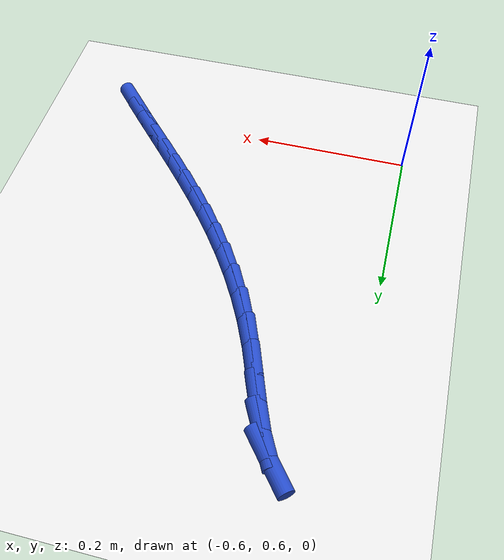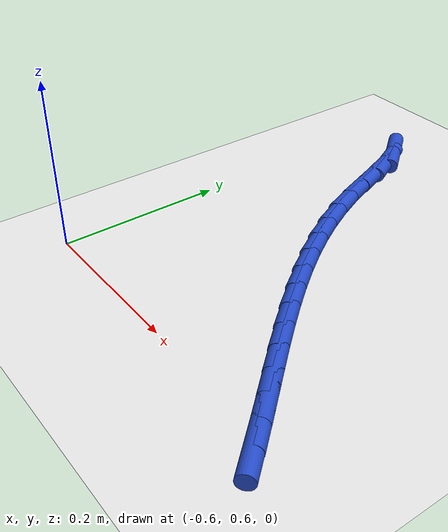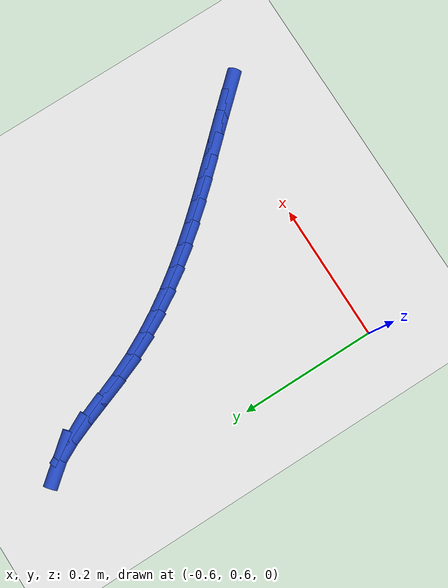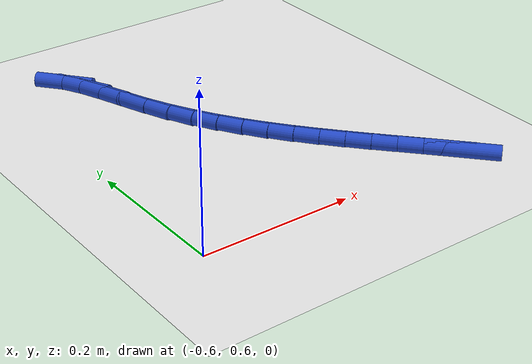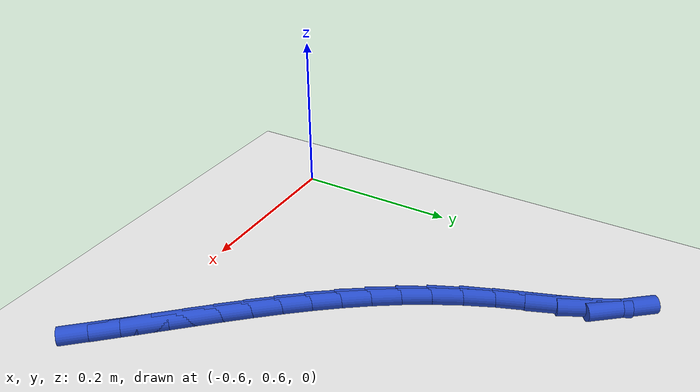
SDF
<sdf version="1.6">
 <world name="default">
  <model name="ground_plane">
   <static>1</static>
   <link name="link">
    <collision name="collision">
     <geometry><plane><normal>0 0 1</normal><size>100 100</size></plane></geometry>
     <surface><friction><ode><mu>100</mu><mu2>50</mu2></ode></friction></surface>
    </collision>
    <visual name="visual">
     <cast_shadows>0</cast_shadows>
     <geometry><plane><normal>0 0 1</normal><size>100 100</size></plane></geometry>
     <material>
      <script><uri>file://media/materials/scripts/gazebo.material</uri><name>Gazebo/WhiteGlow</name></script>
     </material>
    </visual>
   </link>
  </model>
  <model name="line">
   <link name="link_20">
    <pose>-0.21698567780988717 0.5856822221177187 0.01 0 1.57 -0.8376991096954095</pose>
    <collision name="collision">
     <geometry><cylinder><radius>0.01</radius><length>0.08</length></cylinder></geometry>
    </collision>
    <visual name="visual">
     <material>
      <script><name>Gazebo/Blue</name><uri>file://media/materials/scripts/gazebo.material</uri></script>
     </material>
     <geometry><cylinder><radius>0.01</radius><length>0.08</length></cylinder></geometry>
    </visual>
   </link>
   <link name="link_21">
    <pose>-0.23803005412788228 0.6090516001305586 0.01 0 1.57 -0.828080301824036</pose>
    <collision name="collision">
     <geometry><cylinder><radius>0.01</radius><length>0.08</length></cylinder></geometry>
    </collision>
    <visual name="visual">
     <material>
      <script><name>Gazebo/Blue</name><uri>file://media/materials/scripts/gazebo.material</uri></script>
     </material>
     <geometry><cylinder><radius>0.01</radius><length>0.08</length></cylinder></geometry>
    </visual>
   </link>
   <link name="link_22">
    <pose>-0.25936232359985834 0.6322872810259755 0.01 0 1.57 -0.8253959606728755</pose>
    <collision name="collision">
     <geometry><cylinder><radius>0.01</radius><length>0.08</length></cylinder></geometry>
    </collision>
    <visual name="visual">
     <material>
      <script><name>Gazebo/Blue</name><uri>file://media/materials/scripts/gazebo.material</uri></script>
     </material>
     <geometry><cylinder><radius>0.01</radius><length>0.08</length></cylinder></geometry>
    </visual>
   </link>
   <link name="link_23">
    <pose>-0.2808274499562997 0.6555420595498359 0.01 0 1.57 -0.8295802418904895</pose>
    <collision name="collision">
     <geometry><cylinder><radius>0.01</radius><length>0.08</length></cylinder></geometry>
    </collision>
    <visual name="visual">
     <material>
      <script><name>Gazebo/Blue</name><uri>file://media/materials/scripts/gazebo.material</uri></script>
     </material>
     <geometry><cylinder><radius>0.01</radius><length>0.08</length></cylinder></geometry>
    </visual>
   </link>
   <link name="link_24">
    <pose>-0.30227039692769053 0.6789687304480062 0.01 0 1.57 -0.8405573342523168</pose>
    <collision name="collision">
     <geometry><cylinder><radius>0.01</radius><length>0.08</length></cylinder></geometry>
    </collision>
    <visual name="visual">
     <material>
      <script><name>Gazebo/Blue</name><uri>file://media/materials/scripts/gazebo.material</uri></script>
     </material>
     <geometry><cylinder><radius>0.01</radius><length>0.08</length></cylinder></geometry>
    </visual>
   </link>
   <link name="link_25">
    <pose>-0.3235361282445152 0.7027200884663526 0.01 0 1.57 -0.8582361128925206</pose>
    <collision name="collision">
     <geometry><cylinder><radius>0.01</radius><length>0.08</length></cylinder></geometry>
    </collision>
    <visual name="visual">
     <material>
      <script><name>Gazebo/Blue</name><uri>file://media/materials/scripts/gazebo.material</uri></script>
     </material>
     <geometry><cylinder><radius>0.01</radius><length>0.08</length></cylinder></geometry>
    </visual>
   </link>
   <link name="link_26">
    <pose>-0.3444696076372581 0.7269489283507415 0.01 0 1.57 -0.8824960190921636</pose>
    <collision name="collision">
     <geometry><cylinder><radius>0.01</radius><length>0.08</length></cylinder></geometry>
    </collision>
    <visual name="visual">
     <material>
      <script><name>Gazebo/Blue</name><uri>file://media/materials/scripts/gazebo.material</uri></script>
     </material>
     <geometry><cylinder><radius>0.01</radius><length>0.08</length></cylinder></geometry>
    </visual>
   </link>
   <link name="link_27">
    <pose>-0.3649157988364032 0.7518080448470389 0.01 0 1.57 -0.9131654113348566</pose>
    <collision name="collision">
     <geometry><cylinder><radius>0.01</radius><length>0.08</length></cylinder></geometry>
    </collision>
    <visual name="visual">
     <material>
      <script><name>Gazebo/Blue</name><uri>file://media/materials/scripts/gazebo.material</uri></script>
     </material>
     <geometry><cylinder><radius>0.01</radius><length>0.08</length></cylinder></geometry>
    </visual>
   </link>
   <link name="link_28">
    <pose>-0.3847196655724351 0.7774502327011117 0.01 0 1.57 -0.9499944257599731</pose>
    <collision name="collision">
     <geometry><cylinder><radius>0.01</radius><length>0.08</length></cylinder></geometry>
    </collision>
    <visual name="visual">
     <material>
      <script><name>Gazebo/Blue</name><uri>file://media/materials/scripts/gazebo.material</uri></script>
     </material>
     <geometry><cylinder><radius>0.01</radius><length>0.08</length></cylinder></geometry>
    </visual>
   </link>
   <link name="link_29">
    <pose>-0.403726171575838 0.8040282866588262 0.01 0 1.57 -0.9926256515100144</pose>
    <collision name="collision">
     <geometry><cylinder><radius>0.01</radius><length>0.08</length></cylinder></geometry>
    </collision>
    <visual name="visual">
     <material>
      <script><name>Gazebo/Blue</name><uri>file://media/materials/scripts/gazebo.material</uri></script>
     </material>
     <geometry><cylinder><radius>0.01</radius><length>0.08</length></cylinder></geometry>
    </visual>
   </link>
   <link name="link_30">
    <pose>-0.4217802805770962 0.8316950014660482 0.01 0 1.57 -1.0405675045535012</pose>
    <collision name="collision">
     <geometry><cylinder><radius>0.01</radius><length>0.08</length></cylinder></geometry>
    </collision>
    <visual name="visual">
     <material>
      <script><name>Gazebo/Blue</name><uri>file://media/materials/scripts/gazebo.material</uri></script>
     </material>
     <geometry><cylinder><radius>0.01</radius><length>0.08</length></cylinder></geometry>
    </visual>
   </link>
   <link name="link_31">
    <pose>-0.4387269563066942 0.8606031718686451 0.01 0 1.57 -1.0931765645615352</pose>
    <collision name="collision">
     <geometry><cylinder><radius>0.01</radius><length>0.08</length></cylinder></geometry>
    </collision>
    <visual name="visual">
     <material>
      <script><name>Gazebo/Blue</name><uri>file://media/materials/scripts/gazebo.material</uri></script>
     </material>
     <geometry><cylinder><radius>0.01</radius><length>0.08</length></cylinder></geometry>
    </visual>
   </link>
   <link name="link_32">
    <pose>-0.454411162495116 0.890905592612482 0.01 0 1.57 -1.1496554937154349</pose>
    <collision name="collision">
     <geometry><cylinder><radius>0.01</radius><length>0.08</length></cylinder></geometry>
    </collision>
    <visual name="visual">
     <material>
      <script><name>Gazebo/Blue</name><uri>file://media/materials/scripts/gazebo.material</uri></script>
     </material>
     <geometry><cylinder><radius>0.01</radius><length>0.08</length></cylinder></geometry>
    </visual>
   </link>
   <link name="link_33">
    <pose>-0.4686778628728458 0.9227550584434259 0.01 0 1.57 -1.2042232651507694</pose>
    <collision name="collision">
     <geometry><cylinder><radius>0.01</radius><length>0.08</length></cylinder></geometry>
    </collision>
    <visual name="visual">
     <material>
      <script><name>Gazebo/Blue</name><uri>file://media/materials/scripts/gazebo.material</uri></script>
     </material>
     <geometry><cylinder><radius>0.01</radius><length>0.08</length></cylinder></geometry>
    </visual>
   </link>
   <link name="link_34">
    <pose>-0.4814732199996808 0.9560827321562883 0.01 0 1.57 -1.2240359930948945</pose>
    <collision name="collision">
     <geometry><cylinder><radius>0.01</radius><length>0.08</length></cylinder></geometry>
    </collision>
    <visual name="visual">
     <material>
      <script><name>Gazebo/Blue</name><uri>file://media/materials/scripts/gazebo.material</uri></script>
     </material>
     <geometry><cylinder><radius>0.01</radius><length>0.08</length></cylinder></geometry>
    </visual>
   </link>
   <link name="link_35">
    <pose>-0.49345928894048247 0.989251925872889 0.01 0 1.57 -1.1939898592686213</pose>
    <collision name="collision">
     <geometry><cylinder><radius>0.01</radius><length>0.08</length></cylinder></geometry>
    </collision>
    <visual name="visual">
     <material>
      <script><name>Gazebo/Blue</name><uri>file://media/materials/scripts/gazebo.material</uri></script>
     </material>
     <geometry><cylinder><radius>0.01</radius><length>0.08</length></cylinder></geometry>
    </visual>
   </link>
   <link name="link_36">
    <pose>-0.5056068714079089 1.0199497766802443 0.01 0 1.57 -1.097145835350373</pose>
    <collision name="collision">
     <geometry><cylinder><radius>0.01</radius><length>0.08</length></cylinder></geometry>
    </collision>
    <visual name="visual">
     <material>
      <script><name>Gazebo/Blue</name><uri>file://media/materials/scripts/gazebo.material</uri></script>
     </material>
     <geometry><cylinder><radius>0.01</radius><length>0.08</length></cylinder></geometry>
    </visual>
   </link>
   <link name="link_37">
    <pose>-0.5188879838372248 1.045860761344658 0.01 0 1.57 -0.887082022074926</pose>
    <collision name="collision">
     <geometry><cylinder><radius>0.01</radius><length>0.08</length></cylinder></geometry>
    </collision>
    <visual name="visual">
     <material>
      <script><name>Gazebo/Blue</name><uri>file://media/materials/scripts/gazebo.material</uri></script>
     </material>
     <geometry><cylinder><radius>0.01</radius><length>0.08</length></cylinder></geometry>
    </visual>
   </link>
  </model>
 </world>
</sdf>
